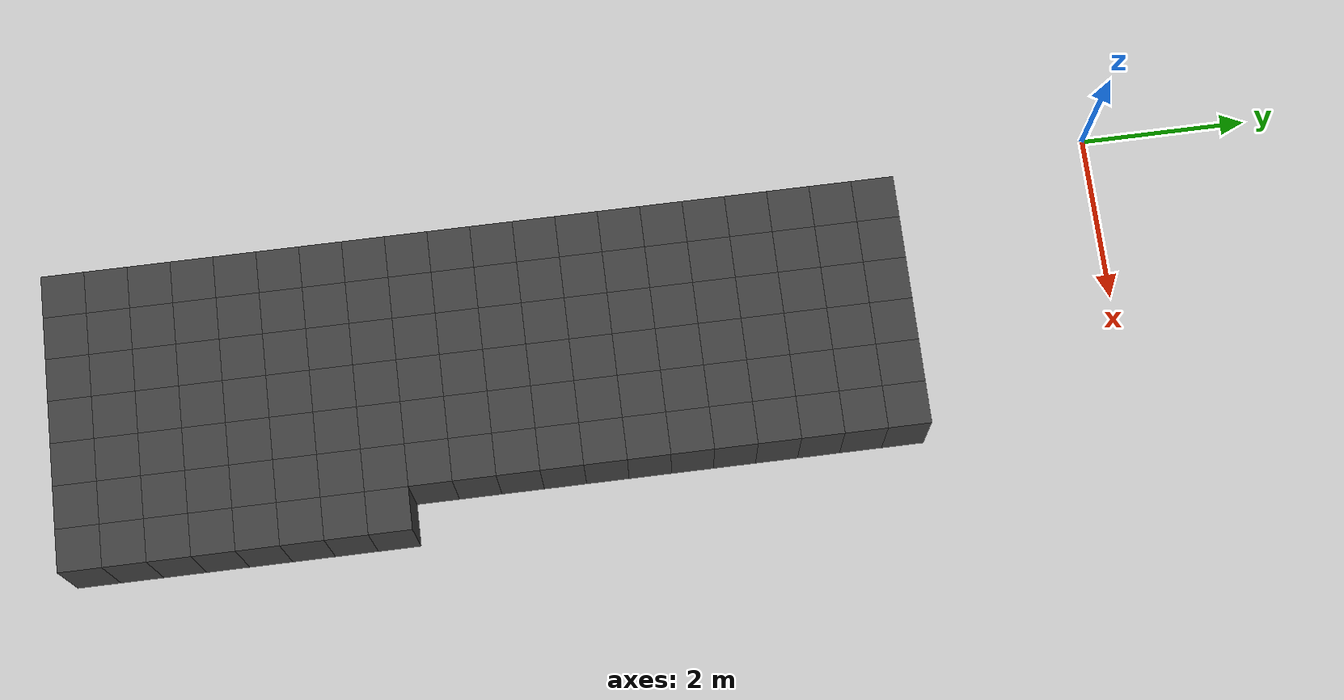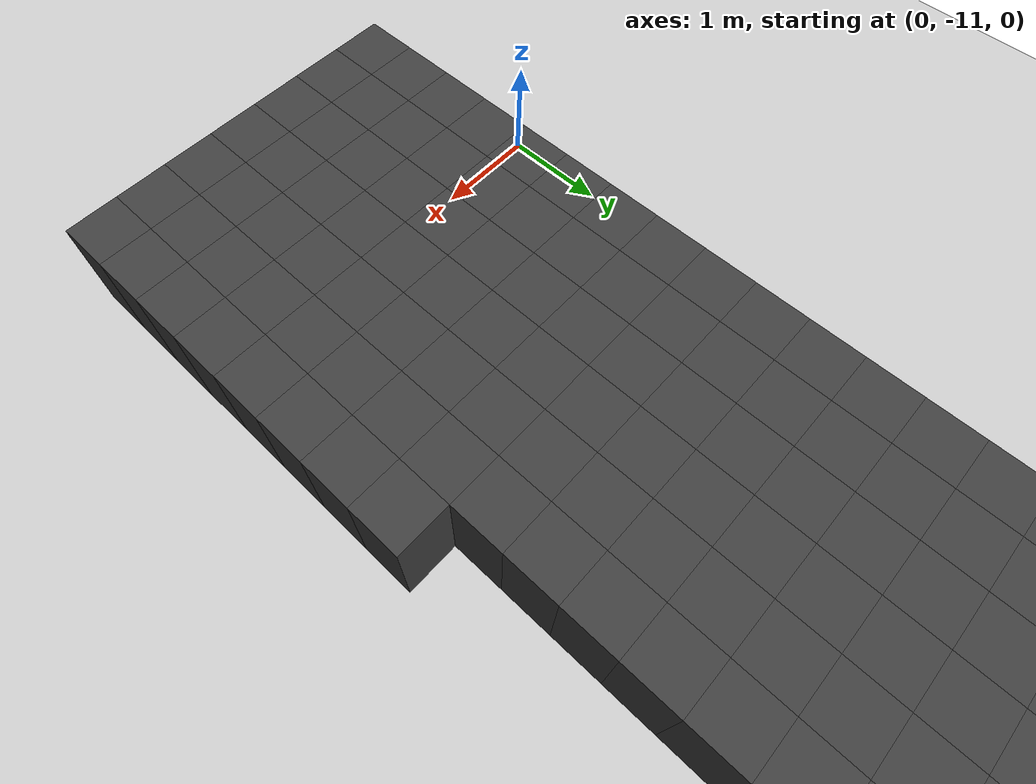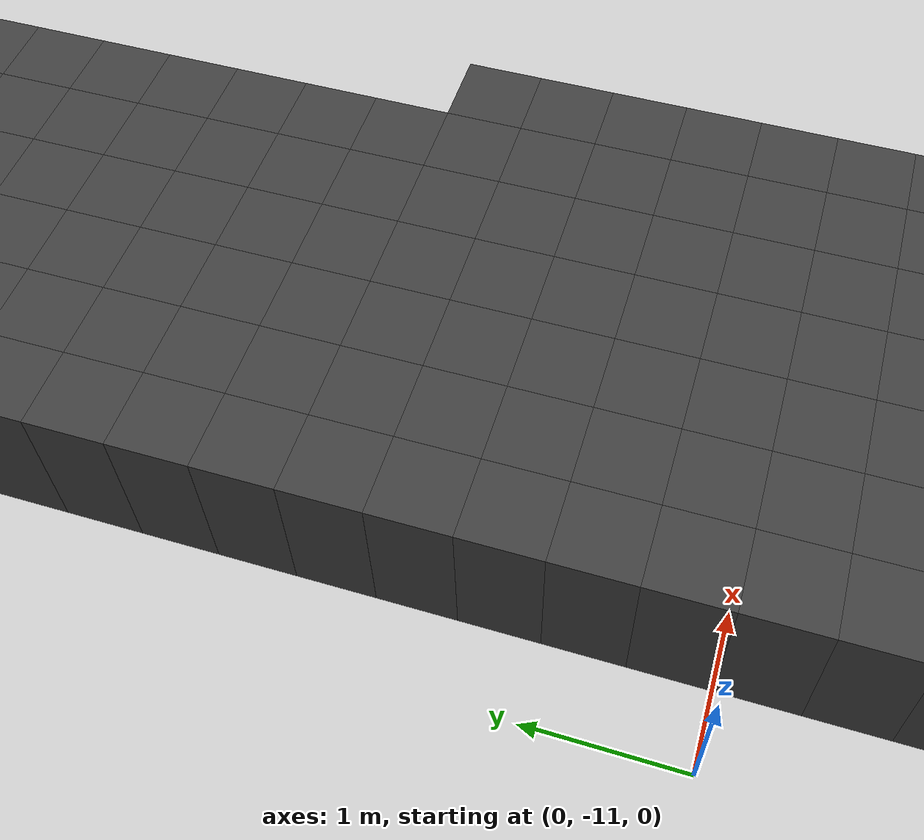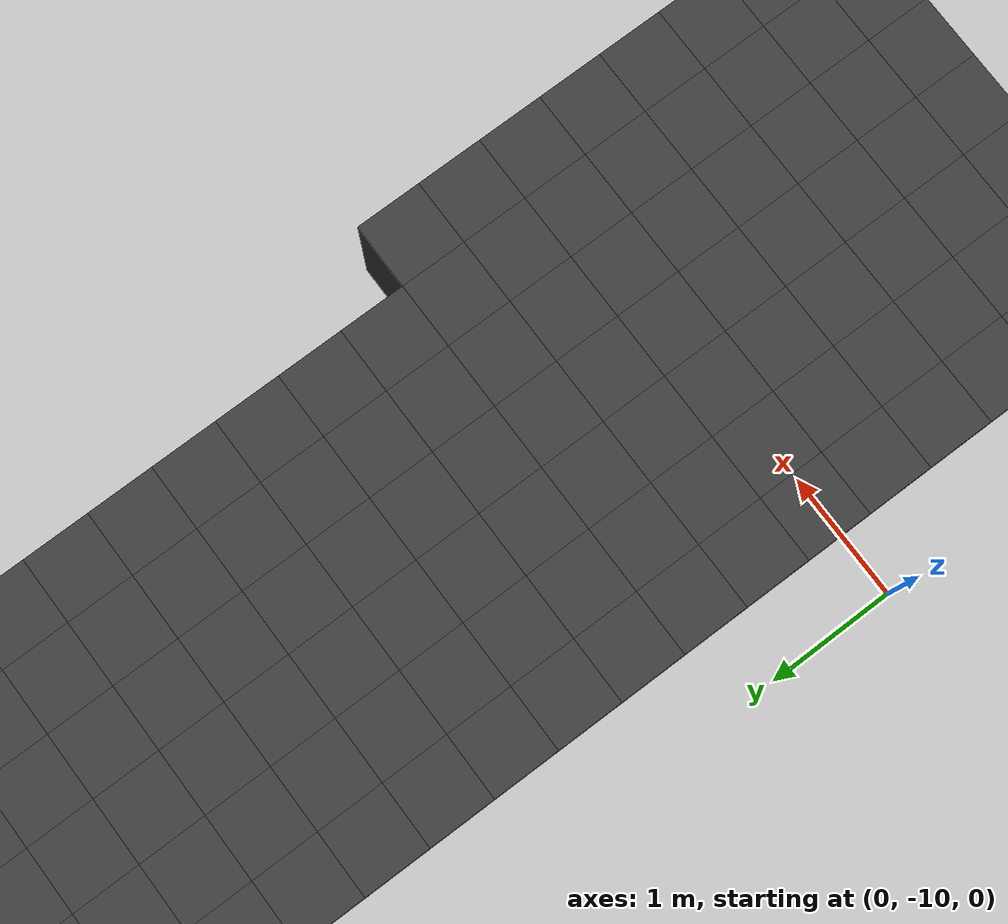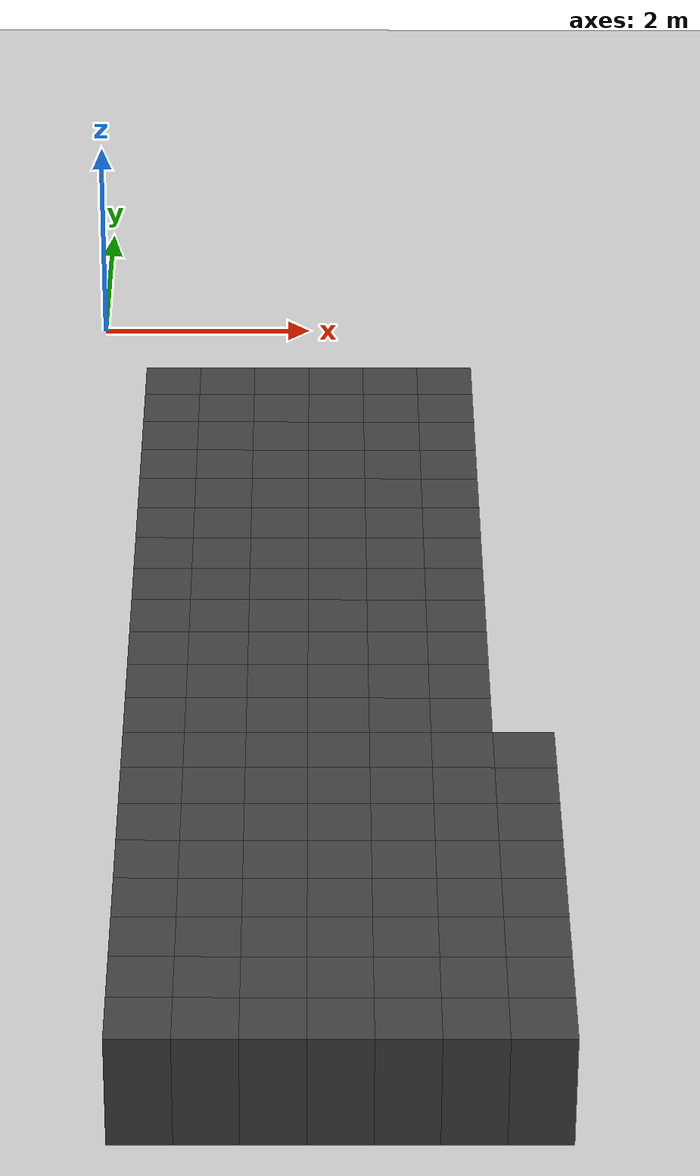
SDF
<sdf version="1.7">
 <world name="map_14980">
  <model name="ground_plane">
   <static>true</static>
   <link name="link">
    <collision name="collision">
     <geometry><plane><normal>0 0 1</normal><size>200 200</size></plane></geometry>
    </collision>
    <visual name="visual">
     <geometry><plane><normal>0 0 1</normal><size>200 200</size></plane></geometry>
     <material><ambient>0.8 0.8 0.8 1</ambient><diffuse>0.8 0.8 0.8 1</diffuse></material>
    </visual>
   </link>
  </model>
  <model name="maze_environment">
   <static>true</static>
   <link name="wall_1087">
    <pose>0.750 -2.750 0.500 0 0 0</pose>
    <collision name="col"><geometry><box><size>0.5 0.5 1.0</size></box></geometry></collision>
    <visual name="vis">
     <geometry><box><size>0.5 0.5 1.0</size></box></geometry>
     <material><ambient>0.15 0.15 0.15 1</ambient><diffuse>0.25 0.25 0.25 1</diffuse></material>
    </visual>
   </link>
   <link name="wall_1088">
    <pose>1.250 -2.750 0.500 0 0 0</pose>
    <collision name="col"><geometry><box><size>0.5 0.5 1.0</size></box></geometry></collision>
    <visual name="vis">
     <geometry><box><size>0.5 0.5 1.0</size></box></geometry>
     <material><ambient>0.15 0.15 0.15 1</ambient><diffuse>0.25 0.25 0.25 1</diffuse></material>
    </visual>
   </link>
   <link name="wall_1089">
    <pose>1.750 -2.750 0.500 0 0 0</pose>
    <collision name="col"><geometry><box><size>0.5 0.5 1.0</size></box></geometry></collision>
    <visual name="vis">
     <geometry><box><size>0.5 0.5 1.0</size></box></geometry>
     <material><ambient>0.15 0.15 0.15 1</ambient><diffuse>0.25 0.25 0.25 1</diffuse></material>
    </visual>
   </link>
   <link name="wall_1090">
    <pose>2.250 -2.750 0.500 0 0 0</pose>
    <collision name="col"><geometry><box><size>0.5 0.5 1.0</size></box></geometry></collision>
    <visual name="vis">
     <geometry><box><size>0.5 0.5 1.0</size></box></geometry>
     <material><ambient>0.15 0.15 0.15 1</ambient><diffuse>0.25 0.25 0.25 1</diffuse></material>
    </visual>
   </link>
   <link name="wall_1091">
    <pose>2.750 -2.750 0.500 0 0 0</pose>
    <collision name="col"><geometry><box><size>0.5 0.5 1.0</size></box></geometry></collision>
    <visual name="vis">
     <geometry><box><size>0.5 0.5 1.0</size></box></geometry>
     <material><ambient>0.15 0.15 0.15 1</ambient><diffuse>0.25 0.25 0.25 1</diffuse></material>
    </visual>
   </link>
   <link name="wall_1092">
    <pose>3.250 -2.750 0.500 0 0 0</pose>
    <collision name="col"><geometry><box><size>0.5 0.5 1.0</size></box></geometry></collision>
    <visual name="vis">
     <geometry><box><size>0.5 0.5 1.0</size></box></geometry>
     <material><ambient>0.15 0.15 0.15 1</ambient><diffuse>0.25 0.25 0.25 1</diffuse></material>
    </visual>
   </link>
   <link name="wall_1123">
    <pose>0.750 -3.250 0.500 0 0 0</pose>
    <collision name="col"><geometry><box><size>0.5 0.5 1.0</size></box></geometry></collision>
    <visual name="vis">
     <geometry><box><size>0.5 0.5 1.0</size></box></geometry>
     <material><ambient>0.15 0.15 0.15 1</ambient><diffuse>0.25 0.25 0.25 1</diffuse></material>
    </visual>
   </link>
   <link name="wall_1124">
    <pose>1.250 -3.250 0.500 0 0 0</pose>
    <collision name="col"><geometry><box><size>0.5 0.5 1.0</size></box></geometry></collision>
    <visual name="vis">
     <geometry><box><size>0.5 0.5 1.0</size></box></geometry>
     <material><ambient>0.15 0.15 0.15 1</ambient><diffuse>0.25 0.25 0.25 1</diffuse></material>
    </visual>
   </link>
   <link name="wall_1125">
    <pose>1.750 -3.250 0.500 0 0 0</pose>
    <collision name="col"><geometry><box><size>0.5 0.5 1.0</size></box></geometry></collision>
    <visual name="vis">
     <geometry><box><size>0.5 0.5 1.0</size></box></geometry>
     <material><ambient>0.15 0.15 0.15 1</ambient><diffuse>0.25 0.25 0.25 1</diffuse></material>
    </visual>
   </link>
   <link name="wall_1126">
    <pose>2.250 -3.250 0.500 0 0 0</pose>
    <collision name="col"><geometry><box><size>0.5 0.5 1.0</size></box></geometry></collision>
    <visual name="vis">
     <geometry><box><size>0.5 0.5 1.0</size></box></geometry>
     <material><ambient>0.15 0.15 0.15 1</ambient><diffuse>0.25 0.25 0.25 1</diffuse></material>
    </visual>
   </link>
   <link name="wall_1127">
    <pose>2.750 -3.250 0.500 0 0 0</pose>
    <collision name="col"><geometry><box><size>0.5 0.5 1.0</size></box></geometry></collision>
    <visual name="vis">
     <geometry><box><size>0.5 0.5 1.0</size></box></geometry>
     <material><ambient>0.15 0.15 0.15 1</ambient><diffuse>0.25 0.25 0.25 1</diffuse></material>
    </visual>
   </link>
   <link name="wall_1128">
    <pose>3.250 -3.250 0.500 0 0 0</pose>
    <collision name="col"><geometry><box><size>0.5 0.5 1.0</size></box></geometry></collision>
    <visual name="vis">
     <geometry><box><size>0.5 0.5 1.0</size></box></geometry>
     <material><ambient>0.15 0.15 0.15 1</ambient><diffuse>0.25 0.25 0.25 1</diffuse></material>
    </visual>
   </link>
   <link name="wall_1161">
    <pose>0.750 -3.750 0.500 0 0 0</pose>
    <collision name="col"><geometry><box><size>0.5 0.5 1.0</size></box></geometry></collision>
    <visual name="vis">
     <geometry><box><size>0.5 0.5 1.0</size></box></geometry>
     <material><ambient>0.15 0.15 0.15 1</ambient><diffuse>0.25 0.25 0.25 1</diffuse></material>
    </visual>
   </link>
   <link name="wall_1162">
    <pose>1.250 -3.750 0.500 0 0 0</pose>
    <collision name="col"><geometry><box><size>0.5 0.5 1.0</size></box></geometry></collision>
    <visual name="vis">
     <geometry><box><size>0.5 0.5 1.0</size></box></geometry>
     <material><ambient>0.15 0.15 0.15 1</ambient><diffuse>0.25 0.25 0.25 1</diffuse></material>
    </visual>
   </link>
   <link name="wall_1163">
    <pose>1.750 -3.750 0.500 0 0 0</pose>
    <collision name="col"><geometry><box><size>0.5 0.5 1.0</size></box></geometry></collision>
    <visual name="vis">
     <geometry><box><size>0.5 0.5 1.0</size></box></geometry>
     <material><ambient>0.15 0.15 0.15 1</ambient><diffuse>0.25 0.25 0.25 1</diffuse></material>
    </visual>
   </link>
   <link name="wall_1164">
    <pose>2.250 -3.750 0.500 0 0 0</pose>
    <collision name="col"><geometry><box><size>0.5 0.5 1.0</size></box></geometry></collision>
    <visual name="vis">
     <geometry><box><size>0.5 0.5 1.0</size></box></geometry>
     <material><ambient>0.15 0.15 0.15 1</ambient><diffuse>0.25 0.25 0.25 1</diffuse></material>
    </visual>
   </link>
   <link name="wall_1165">
    <pose>2.750 -3.750 0.500 0 0 0</pose>
    <collision name="col"><geometry><box><size>0.5 0.5 1.0</size></box></geometry></collision>
    <visual name="vis">
     <geometry><box><size>0.5 0.5 1.0</size></box></geometry>
     <material><ambient>0.15 0.15 0.15 1</ambient><diffuse>0.25 0.25 0.25 1</diffuse></material>
    </visual>
   </link>
   <link name="wall_1166">
    <pose>3.250 -3.750 0.500 0 0 0</pose>
    <collision name="col"><geometry><box><size>0.5 0.5 1.0</size></box></geometry></collision>
    <visual name="vis">
     <geometry><box><size>0.5 0.5 1.0</size></box></geometry>
     <material><ambient>0.15 0.15 0.15 1</ambient><diffuse>0.25 0.25 0.25 1</diffuse></material>
    </visual>
   </link>
   <link name="wall_1206">
    <pose>0.750 -4.250 0.500 0 0 0</pose>
    <collision name="col"><geometry><box><size>0.5 0.5 1.0</size></box></geometry></collision>
    <visual name="vis">
     <geometry><box><size>0.5 0.5 1.0</size></box></geometry>
     <material><ambient>0.15 0.15 0.15 1</ambient><diffuse>0.25 0.25 0.25 1</diffuse></material>
    </visual>
   </link>
   <link name="wall_1207">
    <pose>1.250 -4.250 0.500 0 0 0</pose>
    <collision name="col"><geometry><box><size>0.5 0.5 1.0</size></box></geometry></collision>
    <visual name="vis">
     <geometry><box><size>0.5 0.5 1.0</size></box></geometry>
     <material><ambient>0.15 0.15 0.15 1</ambient><diffuse>0.25 0.25 0.25 1</diffuse></material>
    </visual>
   </link>
   <link name="wall_1208">
    <pose>1.750 -4.250 0.500 0 0 0</pose>
    <collision name="col"><geometry><box><size>0.5 0.5 1.0</size></box></geometry></collision>
    <visual name="vis">
     <geometry><box><size>0.5 0.5 1.0</size></box></geometry>
     <material><ambient>0.15 0.15 0.15 1</ambient><diffuse>0.25 0.25 0.25 1</diffuse></material>
    </visual>
   </link>
   <link name="wall_1209">
    <pose>2.250 -4.250 0.500 0 0 0</pose>
    <collision name="col"><geometry><box><size>0.5 0.5 1.0</size></box></geometry></collision>
    <visual name="vis">
     <geometry><box><size>0.5 0.5 1.0</size></box></geometry>
     <material><ambient>0.15 0.15 0.15 1</ambient><diffuse>0.25 0.25 0.25 1</diffuse></material>
    </visual>
   </link>
   <link name="wall_1210">
    <pose>2.750 -4.250 0.500 0 0 0</pose>
    <collision name="col"><geometry><box><size>0.5 0.5 1.0</size></box></geometry></collision>
    <visual name="vis">
     <geometry><box><size>0.5 0.5 1.0</size></box></geometry>
     <material><ambient>0.15 0.15 0.15 1</ambient><diffuse>0.25 0.25 0.25 1</diffuse></material>
    </visual>
   </link>
   <link name="wall_1211">
    <pose>3.250 -4.250 0.500 0 0 0</pose>
    <collision name="col"><geometry><box><size>0.5 0.5 1.0</size></box></geometry></collision>
    <visual name="vis">
     <geometry><box><size>0.5 0.5 1.0</size></box></geometry>
     <material><ambient>0.15 0.15 0.15 1</ambient><diffuse>0.25 0.25 0.25 1</diffuse></material>
    </visual>
   </link>
   <link name="wall_1251">
    <pose>0.750 -4.750 0.500 0 0 0</pose>
    <collision name="col"><geometry><box><size>0.5 0.5 1.0</size></box></geometry></collision>
    <visual name="vis">
     <geometry><box><size>0.5 0.5 1.0</size></box></geometry>
     <material><ambient>0.15 0.15 0.15 1</ambient><diffuse>0.25 0.25 0.25 1</diffuse></material>
    </visual>
   </link>
   <link name="wall_1252">
    <pose>1.250 -4.750 0.500 0 0 0</pose>
    <collision name="col"><geometry><box><size>0.5 0.5 1.0</size></box></geometry></collision>
    <visual name="vis">
     <geometry><box><size>0.5 0.5 1.0</size></box></geometry>
     <material><ambient>0.15 0.15 0.15 1</ambient><diffuse>0.25 0.25 0.25 1</diffuse></material>
    </visual>
   </link>
   <link name="wall_1253">
    <pose>1.750 -4.750 0.500 0 0 0</pose>
    <collision name="col"><geometry><box><size>0.5 0.5 1.0</size></box></geometry></collision>
    <visual name="vis">
     <geometry><box><size>0.5 0.5 1.0</size></box></geometry>
     <material><ambient>0.15 0.15 0.15 1</ambient><diffuse>0.25 0.25 0.25 1</diffuse></material>
    </visual>
   </link>
   <link name="wall_1254">
    <pose>2.250 -4.750 0.500 0 0 0</pose>
    <collision name="col"><geometry><box><size>0.5 0.5 1.0</size></box></geometry></collision>
    <visual name="vis">
     <geometry><box><size>0.5 0.5 1.0</size></box></geometry>
     <material><ambient>0.15 0.15 0.15 1</ambient><diffuse>0.25 0.25 0.25 1</diffuse></material>
    </visual>
   </link>
   <link name="wall_1255">
    <pose>2.750 -4.750 0.500 0 0 0</pose>
    <collision name="col"><geometry><box><size>0.5 0.5 1.0</size></box></geometry></collision>
    <visual name="vis">
     <geometry><box><size>0.5 0.5 1.0</size></box></geometry>
     <material><ambient>0.15 0.15 0.15 1</ambient><diffuse>0.25 0.25 0.25 1</diffuse></material>
    </visual>
   </link>
   <link name="wall_1256">
    <pose>3.250 -4.750 0.500 0 0 0</pose>
    <collision name="col"><geometry><box><size>0.5 0.5 1.0</size></box></geometry></collision>
    <visual name="vis">
     <geometry><box><size>0.5 0.5 1.0</size></box></geometry>
     <material><ambient>0.15 0.15 0.15 1</ambient><diffuse>0.25 0.25 0.25 1</diffuse></material>
    </visual>
   </link>
   <link name="wall_1295">
    <pose>0.750 -5.250 0.500 0 0 0</pose>
    <collision name="col"><geometry><box><size>0.5 0.5 1.0</size></box></geometry></collision>
    <visual name="vis">
     <geometry><box><size>0.5 0.5 1.0</size></box></geometry>
     <material><ambient>0.15 0.15 0.15 1</ambient><diffuse>0.25 0.25 0.25 1</diffuse></material>
    </visual>
   </link>
   <link name="wall_1296">
    <pose>1.250 -5.250 0.500 0 0 0</pose>
    <collision name="col"><geometry><box><size>0.5 0.5 1.0</size></box></geometry></collision>
    <visual name="vis">
     <geometry><box><size>0.5 0.5 1.0</size></box></geometry>
     <material><ambient>0.15 0.15 0.15 1</ambient><diffuse>0.25 0.25 0.25 1</diffuse></material>
    </visual>
   </link>
   <link name="wall_1297">
    <pose>1.750 -5.250 0.500 0 0 0</pose>
    <collision name="col"><geometry><box><size>0.5 0.5 1.0</size></box></geometry></collision>
    <visual name="vis">
     <geometry><box><size>0.5 0.5 1.0</size></box></geometry>
     <material><ambient>0.15 0.15 0.15 1</ambient><diffuse>0.25 0.25 0.25 1</diffuse></material>
    </visual>
   </link>
   <link name="wall_1298">
    <pose>2.250 -5.250 0.500 0 0 0</pose>
    <collision name="col"><geometry><box><size>0.5 0.5 1.0</size></box></geometry></collision>
    <visual name="vis">
     <geometry><box><size>0.5 0.5 1.0</size></box></geometry>
     <material><ambient>0.15 0.15 0.15 1</ambient><diffuse>0.25 0.25 0.25 1</diffuse></material>
    </visual>
   </link>
   <link name="wall_1299">
    <pose>2.750 -5.250 0.500 0 0 0</pose>
    <collision name="col"><geometry><box><size>0.5 0.5 1.0</size></box></geometry></collision>
    <visual name="vis">
     <geometry><box><size>0.5 0.5 1.0</size></box></geometry>
     <material><ambient>0.15 0.15 0.15 1</ambient><diffuse>0.25 0.25 0.25 1</diffuse></material>
    </visual>
   </link>
   <link name="wall_1300">
    <pose>3.250 -5.250 0.500 0 0 0</pose>
    <collision name="col"><geometry><box><size>0.5 0.5 1.0</size></box></geometry></collision>
    <visual name="vis">
     <geometry><box><size>0.5 0.5 1.0</size></box></geometry>
     <material><ambient>0.15 0.15 0.15 1</ambient><diffuse>0.25 0.25 0.25 1</diffuse></material>
    </visual>
   </link>
   <link name="wall_1339">
    <pose>0.750 -5.750 0.500 0 0 0</pose>
    <collision name="col"><geometry><box><size>0.5 0.5 1.0</size></box></geometry></collision>
    <visual name="vis">
     <geometry><box><size>0.5 0.5 1.0</size></box></geometry>
     <material><ambient>0.15 0.15 0.15 1</ambient><diffuse>0.25 0.25 0.25 1</diffuse></material>
    </visual>
   </link>
   <link name="wall_1340">
    <pose>1.250 -5.750 0.500 0 0 0</pose>
    <collision name="col"><geometry><box><size>0.5 0.5 1.0</size></box></geometry></collision>
    <visual name="vis">
     <geometry><box><size>0.5 0.5 1.0</size></box></geometry>
     <material><ambient>0.15 0.15 0.15 1</ambient><diffuse>0.25 0.25 0.25 1</diffuse></material>
    </visual>
   </link>
   <link name="wall_1341">
    <pose>1.750 -5.750 0.500 0 0 0</pose>
    <collision name="col"><geometry><box><size>0.5 0.5 1.0</size></box></geometry></collision>
    <visual name="vis">
     <geometry><box><size>0.5 0.5 1.0</size></box></geometry>
     <material><ambient>0.15 0.15 0.15 1</ambient><diffuse>0.25 0.25 0.25 1</diffuse></material>
    </visual>
   </link>
   <link name="wall_1342">
    <pose>2.250 -5.750 0.500 0 0 0</pose>
    <collision name="col"><geometry><box><size>0.5 0.5 1.0</size></box></geometry></collision>
    <visual name="vis">
     <geometry><box><size>0.5 0.5 1.0</size></box></geometry>
     <material><ambient>0.15 0.15 0.15 1</ambient><diffuse>0.25 0.25 0.25 1</diffuse></material>
    </visual>
   </link>
   <link name="wall_1343">
    <pose>2.750 -5.750 0.500 0 0 0</pose>
    <collision name="col"><geometry><box><size>0.5 0.5 1.0</size></box></geometry></collision>
    <visual name="vis">
     <geometry><box><size>0.5 0.5 1.0</size></box></geometry>
     <material><ambient>0.15 0.15 0.15 1</ambient><diffuse>0.25 0.25 0.25 1</diffuse></material>
    </visual>
   </link>
   <link name="wall_1344">
    <pose>3.250 -5.750 0.500 0 0 0</pose>
    <collision name="col"><geometry><box><size>0.5 0.5 1.0</size></box></geometry></collision>
    <visual name="vis">
     <geometry><box><size>0.5 0.5 1.0</size></box></geometry>
     <material><ambient>0.15 0.15 0.15 1</ambient><diffuse>0.25 0.25 0.25 1</diffuse></material>
    </visual>
   </link>
   <link name="wall_1383">
    <pose>0.750 -6.250 0.500 0 0 0</pose>
    <collision name="col"><geometry><box><size>0.5 0.5 1.0</size></box></geometry></collision>
    <visual name="vis">
     <geometry><box><size>0.5 0.5 1.0</size></box></geometry>
     <material><ambient>0.15 0.15 0.15 1</ambient><diffuse>0.25 0.25 0.25 1</diffuse></material>
    </visual>
   </link>
   <link name="wall_1384">
    <pose>1.250 -6.250 0.500 0 0 0</pose>
    <collision name="col"><geometry><box><size>0.5 0.5 1.0</size></box></geometry></collision>
    <visual name="vis">
     <geometry><box><size>0.5 0.5 1.0</size></box></geometry>
     <material><ambient>0.15 0.15 0.15 1</ambient><diffuse>0.25 0.25 0.25 1</diffuse></material>
    </visual>
   </link>
   <link name="wall_1385">
    <pose>1.750 -6.250 0.500 0 0 0</pose>
    <collision name="col"><geometry><box><size>0.5 0.5 1.0</size></box></geometry></collision>
    <visual name="vis">
     <geometry><box><size>0.5 0.5 1.0</size></box></geometry>
     <material><ambient>0.15 0.15 0.15 1</ambient><diffuse>0.25 0.25 0.25 1</diffuse></material>
    </visual>
   </link>
   <link name="wall_1386">
    <pose>2.250 -6.250 0.500 0 0 0</pose>
    <collision name="col"><geometry><box><size>0.5 0.5 1.0</size></box></geometry></collision>
    <visual name="vis">
     <geometry><box><size>0.5 0.5 1.0</size></box></geometry>
     <material><ambient>0.15 0.15 0.15 1</ambient><diffuse>0.25 0.25 0.25 1</diffuse></material>
    </visual>
   </link>
   <link name="wall_1387">
    <pose>2.750 -6.250 0.500 0 0 0</pose>
    <collision name="col"><geometry><box><size>0.5 0.5 1.0</size></box></geometry></collision>
    <visual name="vis">
     <geometry><box><size>0.5 0.5 1.0</size></box></geometry>
     <material><ambient>0.15 0.15 0.15 1</ambient><diffuse>0.25 0.25 0.25 1</diffuse></material>
    </visual>
   </link>
   <link name="wall_1388">
    <pose>3.250 -6.250 0.500 0 0 0</pose>
    <collision name="col"><geometry><box><size>0.5 0.5 1.0</size></box></geometry></collision>
    <visual name="vis">
     <geometry><box><size>0.5 0.5 1.0</size></box></geometry>
     <material><ambient>0.15 0.15 0.15 1</ambient><diffuse>0.25 0.25 0.25 1</diffuse></material>
    </visual>
   </link>
   <link name="wall_1416">
    <pose>0.750 -6.750 0.500 0 0 0</pose>
    <collision name="col"><geometry><box><size>0.5 0.5 1.0</size></box></geometry></collision>
    <visual name="vis">
     <geometry><box><size>0.5 0.5 1.0</size></box></geometry>
     <material><ambient>0.15 0.15 0.15 1</ambient><diffuse>0.25 0.25 0.25 1</diffuse></material>
    </visual>
   </link>
   <link name="wall_1417">
    <pose>1.250 -6.750 0.500 0 0 0</pose>
    <collision name="col"><geometry><box><size>0.5 0.5 1.0</size></box></geometry></collision>
    <visual name="vis">
     <geometry><box><size>0.5 0.5 1.0</size></box></geometry>
     <material><ambient>0.15 0.15 0.15 1</ambient><diffuse>0.25 0.25 0.25 1</diffuse></material>
    </visual>
   </link>
   <link name="wall_1418">
    <pose>1.750 -6.750 0.500 0 0 0</pose>
    <collision name="col"><geometry><box><size>0.5 0.5 1.0</size></box></geometry></collision>
    <visual name="vis">
     <geometry><box><size>0.5 0.5 1.0</size></box></geometry>
     <material><ambient>0.15 0.15 0.15 1</ambient><diffuse>0.25 0.25 0.25 1</diffuse></material>
    </visual>
   </link>
   <link name="wall_1419">
    <pose>2.250 -6.750 0.500 0 0 0</pose>
    <collision name="col"><geometry><box><size>0.5 0.5 1.0</size></box></geometry></collision>
    <visual name="vis">
     <geometry><box><size>0.5 0.5 1.0</size></box></geometry>
     <material><ambient>0.15 0.15 0.15 1</ambient><diffuse>0.25 0.25 0.25 1</diffuse></material>
    </visual>
   </link>
   <link name="wall_1420">
    <pose>2.750 -6.750 0.500 0 0 0</pose>
    <collision name="col"><geometry><box><size>0.5 0.5 1.0</size></box></geometry></collision>
    <visual name="vis">
     <geometry><box><size>0.5 0.5 1.0</size></box></geometry>
     <material><ambient>0.15 0.15 0.15 1</ambient><diffuse>0.25 0.25 0.25 1</diffuse></material>
    </visual>
   </link>
   <link name="wall_1421">
    <pose>3.250 -6.750 0.500 0 0 0</pose>
    <collision name="col"><geometry><box><size>0.5 0.5 1.0</size></box></geometry></collision>
    <visual name="vis">
     <geometry><box><size>0.5 0.5 1.0</size></box></geometry>
     <material><ambient>0.15 0.15 0.15 1</ambient><diffuse>0.25 0.25 0.25 1</diffuse></material>
    </visual>
   </link>
   <link name="wall_1442">
    <pose>0.750 -7.250 0.500 0 0 0</pose>
    <collision name="col"><geometry><box><size>0.5 0.5 1.0</size></box></geometry></collision>
    <visual name="vis">
     <geometry><box><size>0.5 0.5 1.0</size></box></geometry>
     <material><ambient>0.15 0.15 0.15 1</ambient><diffuse>0.25 0.25 0.25 1</diffuse></material>
    </visual>
   </link>
   <link name="wall_1443">
    <pose>1.250 -7.250 0.500 0 0 0</pose>
    <collision name="col"><geometry><box><size>0.5 0.5 1.0</size></box></geometry></collision>
    <visual name="vis">
     <geometry><box><size>0.5 0.5 1.0</size></box></geometry>
     <material><ambient>0.15 0.15 0.15 1</ambient><diffuse>0.25 0.25 0.25 1</diffuse></material>
    </visual>
   </link>
   <link name="wall_1444">
    <pose>1.750 -7.250 0.500 0 0 0</pose>
    <collision name="col"><geometry><box><size>0.5 0.5 1.0</size></box></geometry></collision>
    <visual name="vis">
     <geometry><box><size>0.5 0.5 1.0</size></box></geometry>
     <material><ambient>0.15 0.15 0.15 1</ambient><diffuse>0.25 0.25 0.25 1</diffuse></material>
    </visual>
   </link>
   <link name="wall_1445">
    <pose>2.250 -7.250 0.500 0 0 0</pose>
    <collision name="col"><geometry><box><size>0.5 0.5 1.0</size></box></geometry></collision>
    <visual name="vis">
     <geometry><box><size>0.5 0.5 1.0</size></box></geometry>
     <material><ambient>0.15 0.15 0.15 1</ambient><diffuse>0.25 0.25 0.25 1</diffuse></material>
    </visual>
   </link>
   <link name="wall_1446">
    <pose>2.750 -7.250 0.500 0 0 0</pose>
    <collision name="col"><geometry><box><size>0.5 0.5 1.0</size></box></geometry></collision>
    <visual name="vis">
     <geometry><box><size>0.5 0.5 1.0</size></box></geometry>
     <material><ambient>0.15 0.15 0.15 1</ambient><diffuse>0.25 0.25 0.25 1</diffuse></material>
    </visual>
   </link>
   <link name="wall_1447">
    <pose>3.250 -7.250 0.500 0 0 0</pose>
    <collision name="col"><geometry><box><size>0.5 0.5 1.0</size></box></geometry></collision>
    <visual name="vis">
     <geometry><box><size>0.5 0.5 1.0</size></box></geometry>
     <material><ambient>0.15 0.15 0.15 1</ambient><diffuse>0.25 0.25 0.25 1</diffuse></material>
    </visual>
   </link>
   <link name="wall_1466">
    <pose>0.750 -7.750 0.500 0 0 0</pose>
    <collision name="col"><geometry><box><size>0.5 0.5 1.0</size></box></geometry></collision>
    <visual name="vis">
     <geometry><box><size>0.5 0.5 1.0</size></box></geometry>
     <material><ambient>0.15 0.15 0.15 1</ambient><diffuse>0.25 0.25 0.25 1</diffuse></material>
    </visual>
   </link>
   <link name="wall_1467">
    <pose>1.250 -7.750 0.500 0 0 0</pose>
    <collision name="col"><geometry><box><size>0.5 0.5 1.0</size></box></geometry></collision>
    <visual name="vis">
     <geometry><box><size>0.5 0.5 1.0</size></box></geometry>
     <material><ambient>0.15 0.15 0.15 1</ambient><diffuse>0.25 0.25 0.25 1</diffuse></material>
    </visual>
   </link>
   <link name="wall_1468">
    <pose>1.750 -7.750 0.500 0 0 0</pose>
    <collision name="col"><geometry><box><size>0.5 0.5 1.0</size></box></geometry></collision>
    <visual name="vis">
     <geometry><box><size>0.5 0.5 1.0</size></box></geometry>
     <material><ambient>0.15 0.15 0.15 1</ambient><diffuse>0.25 0.25 0.25 1</diffuse></material>
    </visual>
   </link>
   <link name="wall_1469">
    <pose>2.250 -7.750 0.500 0 0 0</pose>
    <collision name="col"><geometry><box><size>0.5 0.5 1.0</size></box></geometry></collision>
    <visual name="vis">
     <geometry><box><size>0.5 0.5 1.0</size></box></geometry>
     <material><ambient>0.15 0.15 0.15 1</ambient><diffuse>0.25 0.25 0.25 1</diffuse></material>
    </visual>
   </link>
   <link name="wall_1470">
    <pose>2.750 -7.750 0.500 0 0 0</pose>
    <collision name="col"><geometry><box><size>0.5 0.5 1.0</size></box></geometry></collision>
    <visual name="vis">
     <geometry><box><size>0.5 0.5 1.0</size></box></geometry>
     <material><ambient>0.15 0.15 0.15 1</ambient><diffuse>0.25 0.25 0.25 1</diffuse></material>
    </visual>
   </link>
   <link name="wall_1471">
    <pose>3.250 -7.750 0.500 0 0 0</pose>
    <collision name="col"><geometry><box><size>0.5 0.5 1.0</size></box></geometry></collision>
    <visual name="vis">
     <geometry><box><size>0.5 0.5 1.0</size></box></geometry>
     <material><ambient>0.15 0.15 0.15 1</ambient><diffuse>0.25 0.25 0.25 1</diffuse></material>
    </visual>
   </link>
   <link name="wall_1490">
    <pose>0.750 -8.250 0.500 0 0 0</pose>
    <collision name="col"><geometry><box><size>0.5 0.5 1.0</size></box></geometry></collision>
    <visual name="vis">
     <geometry><box><size>0.5 0.5 1.0</size></box></geometry>
     <material><ambient>0.15 0.15 0.15 1</ambient><diffuse>0.25 0.25 0.25 1</diffuse></material>
    </visual>
   </link>
   <link name="wall_1491">
    <pose>1.250 -8.250 0.500 0 0 0</pose>
    <collision name="col"><geometry><box><size>0.5 0.5 1.0</size></box></geometry></collision>
    <visual name="vis">
     <geometry><box><size>0.5 0.5 1.0</size></box></geometry>
     <material><ambient>0.15 0.15 0.15 1</ambient><diffuse>0.25 0.25 0.25 1</diffuse></material>
    </visual>
   </link>
   <link name="wall_1492">
    <pose>1.750 -8.250 0.500 0 0 0</pose>
    <collision name="col"><geometry><box><size>0.5 0.5 1.0</size></box></geometry></collision>
    <visual name="vis">
     <geometry><box><size>0.5 0.5 1.0</size></box></geometry>
     <material><ambient>0.15 0.15 0.15 1</ambient><diffuse>0.25 0.25 0.25 1</diffuse></material>
    </visual>
   </link>
   <link name="wall_1493">
    <pose>2.250 -8.250 0.500 0 0 0</pose>
    <collision name="col"><geometry><box><size>0.5 0.5 1.0</size></box></geometry></collision>
    <visual name="vis">
     <geometry><box><size>0.5 0.5 1.0</size></box></geometry>
     <material><ambient>0.15 0.15 0.15 1</ambient><diffuse>0.25 0.25 0.25 1</diffuse></material>
    </visual>
   </link>
   <link name="wall_1494">
    <pose>2.750 -8.250 0.500 0 0 0</pose>
    <collision name="col"><geometry><box><size>0.5 0.5 1.0</size></box></geometry></collision>
    <visual name="vis">
     <geometry><box><size>0.5 0.5 1.0</size></box></geometry>
     <material><ambient>0.15 0.15 0.15 1</ambient><diffuse>0.25 0.25 0.25 1</diffuse></material>
    </visual>
   </link>
   <link name="wall_1495">
    <pose>3.250 -8.250 0.500 0 0 0</pose>
    <collision name="col"><geometry><box><size>0.5 0.5 1.0</size></box></geometry></collision>
    <visual name="vis">
     <geometry><box><size>0.5 0.5 1.0</size></box></geometry>
     <material><ambient>0.15 0.15 0.15 1</ambient><diffuse>0.25 0.25 0.25 1</diffuse></material>
    </visual>
   </link>
   <link name="wall_1514">
    <pose>0.750 -8.750 0.500 0 0 0</pose>
    <collision name="col"><geometry><box><size>0.5 0.5 1.0</size></box></geometry></collision>
    <visual name="vis">
     <geometry><box><size>0.5 0.5 1.0</size></box></geometry>
     <material><ambient>0.15 0.15 0.15 1</ambient><diffuse>0.25 0.25 0.25 1</diffuse></material>
    </visual>
   </link>
   <link name="wall_1515">
    <pose>1.250 -8.750 0.500 0 0 0</pose>
    <collision name="col"><geometry><box><size>0.5 0.5 1.0</size></box></geometry></collision>
    <visual name="vis">
     <geometry><box><size>0.5 0.5 1.0</size></box></geometry>
     <material><ambient>0.15 0.15 0.15 1</ambient><diffuse>0.25 0.25 0.25 1</diffuse></material>
    </visual>
   </link>
   <link name="wall_1516">
    <pose>1.750 -8.750 0.500 0 0 0</pose>
    <collision name="col"><geometry><box><size>0.5 0.5 1.0</size></box></geometry></collision>
    <visual name="vis">
     <geometry><box><size>0.5 0.5 1.0</size></box></geometry>
     <material><ambient>0.15 0.15 0.15 1</ambient><diffuse>0.25 0.25 0.25 1</diffuse></material>
    </visual>
   </link>
   <link name="wall_1517">
    <pose>2.250 -8.750 0.500 0 0 0</pose>
    <collision name="col"><geometry><box><size>0.5 0.5 1.0</size></box></geometry></collision>
    <visual name="vis">
     <geometry><box><size>0.5 0.5 1.0</size></box></geometry>
     <material><ambient>0.15 0.15 0.15 1</ambient><diffuse>0.25 0.25 0.25 1</diffuse></material>
    </visual>
   </link>
   <link name="wall_1518">
    <pose>2.750 -8.750 0.500 0 0 0</pose>
    <collision name="col"><geometry><box><size>0.5 0.5 1.0</size></box></geometry></collision>
    <visual name="vis">
     <geometry><box><size>0.5 0.5 1.0</size></box></geometry>
     <material><ambient>0.15 0.15 0.15 1</ambient><diffuse>0.25 0.25 0.25 1</diffuse></material>
    </visual>
   </link>
   <link name="wall_1519">
    <pose>3.250 -8.750 0.500 0 0 0</pose>
    <collision name="col"><geometry><box><size>0.5 0.5 1.0</size></box></geometry></collision>
    <visual name="vis">
     <geometry><box><size>0.5 0.5 1.0</size></box></geometry>
     <material><ambient>0.15 0.15 0.15 1</ambient><diffuse>0.25 0.25 0.25 1</diffuse></material>
    </visual>
   </link>
   <link name="wall_1520">
    <pose>3.750 -8.750 0.500 0 0 0</pose>
    <collision name="col"><geometry><box><size>0.5 0.5 1.0</size></box></geometry></collision>
    <visual name="vis">
     <geometry><box><size>0.5 0.5 1.0</size></box></geometry>
     <material><ambient>0.15 0.15 0.15 1</ambient><diffuse>0.25 0.25 0.25 1</diffuse></material>
    </visual>
   </link>
   <link name="wall_1540">
    <pose>0.750 -9.250 0.500 0 0 0</pose>
    <collision name="col"><geometry><box><size>0.5 0.5 1.0</size></box></geometry></collision>
    <visual name="vis">
     <geometry><box><size>0.5 0.5 1.0</size></box></geometry>
     <material><ambient>0.15 0.15 0.15 1</ambient><diffuse>0.25 0.25 0.25 1</diffuse></material>
    </visual>
   </link>
   <link name="wall_1541">
    <pose>1.250 -9.250 0.500 0 0 0</pose>
    <collision name="col"><geometry><box><size>0.5 0.5 1.0</size></box></geometry></collision>
    <visual name="vis">
     <geometry><box><size>0.5 0.5 1.0</size></box></geometry>
     <material><ambient>0.15 0.15 0.15 1</ambient><diffuse>0.25 0.25 0.25 1</diffuse></material>
    </visual>
   </link>
   <link name="wall_1542">
    <pose>1.750 -9.250 0.500 0 0 0</pose>
    <collision name="col"><geometry><box><size>0.5 0.5 1.0</size></box></geometry></collision>
    <visual name="vis">
     <geometry><box><size>0.5 0.5 1.0</size></box></geometry>
     <material><ambient>0.15 0.15 0.15 1</ambient><diffuse>0.25 0.25 0.25 1</diffuse></material>
    </visual>
   </link>
   <link name="wall_1543">
    <pose>2.250 -9.250 0.500 0 0 0</pose>
    <collision name="col"><geometry><box><size>0.5 0.5 1.0</size></box></geometry></collision>
    <visual name="vis">
     <geometry><box><size>0.5 0.5 1.0</size></box></geometry>
     <material><ambient>0.15 0.15 0.15 1</ambient><diffuse>0.25 0.25 0.25 1</diffuse></material>
    </visual>
   </link>
   <link name="wall_1544">
    <pose>2.750 -9.250 0.500 0 0 0</pose>
    <collision name="col"><geometry><box><size>0.5 0.5 1.0</size></box></geometry></collision>
    <visual name="vis">
     <geometry><box><size>0.5 0.5 1.0</size></box></geometry>
     <material><ambient>0.15 0.15 0.15 1</ambient><diffuse>0.25 0.25 0.25 1</diffuse></material>
    </visual>
   </link>
   <link name="wall_1545">
    <pose>3.250 -9.250 0.500 0 0 0</pose>
    <collision name="col"><geometry><box><size>0.5 0.5 1.0</size></box></geometry></collision>
    <visual name="vis">
     <geometry><box><size>0.5 0.5 1.0</size></box></geometry>
     <material><ambient>0.15 0.15 0.15 1</ambient><diffuse>0.25 0.25 0.25 1</diffuse></material>
    </visual>
   </link>
   <link name="wall_1546">
    <pose>3.750 -9.250 0.500 0 0 0</pose>
    <collision name="col"><geometry><box><size>0.5 0.5 1.0</size></box></geometry></collision>
    <visual name="vis">
     <geometry><box><size>0.5 0.5 1.0</size></box></geometry>
     <material><ambient>0.15 0.15 0.15 1</ambient><diffuse>0.25 0.25 0.25 1</diffuse></material>
    </visual>
   </link>
   <link name="wall_1571">
    <pose>0.750 -9.750 0.500 0 0 0</pose>
    <collision name="col"><geometry><box><size>0.5 0.5 1.0</size></box></geometry></collision>
    <visual name="vis">
     <geometry><box><size>0.5 0.5 1.0</size></box></geometry>
     <material><ambient>0.15 0.15 0.15 1</ambient><diffuse>0.25 0.25 0.25 1</diffuse></material>
    </visual>
   </link>
   <link name="wall_1572">
    <pose>1.250 -9.750 0.500 0 0 0</pose>
    <collision name="col"><geometry><box><size>0.5 0.5 1.0</size></box></geometry></collision>
    <visual name="vis">
     <geometry><box><size>0.5 0.5 1.0</size></box></geometry>
     <material><ambient>0.15 0.15 0.15 1</ambient><diffuse>0.25 0.25 0.25 1</diffuse></material>
    </visual>
   </link>
   <link name="wall_1573">
    <pose>1.750 -9.750 0.500 0 0 0</pose>
    <collision name="col"><geometry><box><size>0.5 0.5 1.0</size></box></geometry></collision>
    <visual name="vis">
     <geometry><box><size>0.5 0.5 1.0</size></box></geometry>
     <material><ambient>0.15 0.15 0.15 1</ambient><diffuse>0.25 0.25 0.25 1</diffuse></material>
    </visual>
   </link>
   <link name="wall_1574">
    <pose>2.250 -9.750 0.500 0 0 0</pose>
    <collision name="col"><geometry><box><size>0.5 0.5 1.0</size></box></geometry></collision>
    <visual name="vis">
     <geometry><box><size>0.5 0.5 1.0</size></box></geometry>
     <material><ambient>0.15 0.15 0.15 1</ambient><diffuse>0.25 0.25 0.25 1</diffuse></material>
    </visual>
   </link>
   <link name="wall_1575">
    <pose>2.750 -9.750 0.500 0 0 0</pose>
    <collision name="col"><geometry><box><size>0.5 0.5 1.0</size></box></geometry></collision>
    <visual name="vis">
     <geometry><box><size>0.5 0.5 1.0</size></box></geometry>
     <material><ambient>0.15 0.15 0.15 1</ambient><diffuse>0.25 0.25 0.25 1</diffuse></material>
    </visual>
   </link>
   <link name="wall_1576">
    <pose>3.250 -9.750 0.500 0 0 0</pose>
    <collision name="col"><geometry><box><size>0.5 0.5 1.0</size></box></geometry></collision>
    <visual name="vis">
     <geometry><box><size>0.5 0.5 1.0</size></box></geometry>
     <material><ambient>0.15 0.15 0.15 1</ambient><diffuse>0.25 0.25 0.25 1</diffuse></material>
    </visual>
   </link>
   <link name="wall_1577">
    <pose>3.750 -9.750 0.500 0 0 0</pose>
    <collision name="col"><geometry><box><size>0.5 0.5 1.0</size></box></geometry></collision>
    <visual name="vis">
     <geometry><box><size>0.5 0.5 1.0</size></box></geometry>
     <material><ambient>0.15 0.15 0.15 1</ambient><diffuse>0.25 0.25 0.25 1</diffuse></material>
    </visual>
   </link>
   <link name="wall_1602">
    <pose>0.750 -10.250 0.500 0 0 0</pose>
    <collision name="col"><geometry><box><size>0.5 0.5 1.0</size></box></geometry></collision>
    <visual name="vis">
     <geometry><box><size>0.5 0.5 1.0</size></box></geometry>
     <material><ambient>0.15 0.15 0.15 1</ambient><diffuse>0.25 0.25 0.25 1</diffuse></material>
    </visual>
   </link>
   <link name="wall_1603">
    <pose>1.250 -10.250 0.500 0 0 0</pose>
    <collision name="col"><geometry><box><size>0.5 0.5 1.0</size></box></geometry></collision>
    <visual name="vis">
     <geometry><box><size>0.5 0.5 1.0</size></box></geometry>
     <material><ambient>0.15 0.15 0.15 1</ambient><diffuse>0.25 0.25 0.25 1</diffuse></material>
    </visual>
   </link>
   <link name="wall_1604">
    <pose>1.750 -10.250 0.500 0 0 0</pose>
    <collision name="col"><geometry><box><size>0.5 0.5 1.0</size></box></geometry></collision>
    <visual name="vis">
     <geometry><box><size>0.5 0.5 1.0</size></box></geometry>
     <material><ambient>0.15 0.15 0.15 1</ambient><diffuse>0.25 0.25 0.25 1</diffuse></material>
    </visual>
   </link>
   <link name="wall_1605">
    <pose>2.250 -10.250 0.500 0 0 0</pose>
    <collision name="col"><geometry><box><size>0.5 0.5 1.0</size></box></geometry></collision>
    <visual name="vis">
     <geometry><box><size>0.5 0.5 1.0</size></box></geometry>
     <material><ambient>0.15 0.15 0.15 1</ambient><diffuse>0.25 0.25 0.25 1</diffuse></material>
    </visual>
   </link>
   <link name="wall_1606">
    <pose>2.750 -10.250 0.500 0 0 0</pose>
    <collision name="col"><geometry><box><size>0.5 0.5 1.0</size></box></geometry></collision>
    <visual name="vis">
     <geometry><box><size>0.5 0.5 1.0</size></box></geometry>
     <material><ambient>0.15 0.15 0.15 1</ambient><diffuse>0.25 0.25 0.25 1</diffuse></material>
    </visual>
   </link>
   <link name="wall_1607">
    <pose>3.250 -10.250 0.500 0 0 0</pose>
    <collision name="col"><geometry><box><size>0.5 0.5 1.0</size></box></geometry></collision>
    <visual name="vis">
     <geometry><box><size>0.5 0.5 1.0</size></box></geometry>
     <material><ambient>0.15 0.15 0.15 1</ambient><diffuse>0.25 0.25 0.25 1</diffuse></material>
    </visual>
   </link>
   <link name="wall_1608">
    <pose>3.750 -10.250 0.500 0 0 0</pose>
    <collision name="col"><geometry><box><size>0.5 0.5 1.0</size></box></geometry></collision>
    <visual name="vis">
     <geometry><box><size>0.5 0.5 1.0</size></box></geometry>
     <material><ambient>0.15 0.15 0.15 1</ambient><diffuse>0.25 0.25 0.25 1</diffuse></material>
    </visual>
   </link>
   <link name="wall_1635">
    <pose>0.750 -10.750 0.500 0 0 0</pose>
    <collision name="col"><geometry><box><size>0.5 0.5 1.0</size></box></geometry></collision>
    <visual name="vis">
     <geometry><box><size>0.5 0.5 1.0</size></box></geometry>
     <material><ambient>0.15 0.15 0.15 1</ambient><diffuse>0.25 0.25 0.25 1</diffuse></material>
    </visual>
   </link>
   <link name="wall_1636">
    <pose>1.250 -10.750 0.500 0 0 0</pose>
    <collision name="col"><geometry><box><size>0.5 0.5 1.0</size></box></geometry></collision>
    <visual name="vis">
     <geometry><box><size>0.5 0.5 1.0</size></box></geometry>
     <material><ambient>0.15 0.15 0.15 1</ambient><diffuse>0.25 0.25 0.25 1</diffuse></material>
    </visual>
   </link>
   <link name="wall_1637">
    <pose>1.750 -10.750 0.500 0 0 0</pose>
    <collision name="col"><geometry><box><size>0.5 0.5 1.0</size></box></geometry></collision>
    <visual name="vis">
     <geometry><box><size>0.5 0.5 1.0</size></box></geometry>
     <material><ambient>0.15 0.15 0.15 1</ambient><diffuse>0.25 0.25 0.25 1</diffuse></material>
    </visual>
   </link>
   <link name="wall_1638">
    <pose>2.250 -10.750 0.500 0 0 0</pose>
    <collision name="col"><geometry><box><size>0.5 0.5 1.0</size></box></geometry></collision>
    <visual name="vis">
     <geometry><box><size>0.5 0.5 1.0</size></box></geometry>
     <material><ambient>0.15 0.15 0.15 1</ambient><diffuse>0.25 0.25 0.25 1</diffuse></material>
    </visual>
   </link>
   <link name="wall_1639">
    <pose>2.750 -10.750 0.500 0 0 0</pose>
    <collision name="col"><geometry><box><size>0.5 0.5 1.0</size></box></geometry></collision>
    <visual name="vis">
     <geometry><box><size>0.5 0.5 1.0</size></box></geometry>
     <material><ambient>0.15 0.15 0.15 1</ambient><diffuse>0.25 0.25 0.25 1</diffuse></material>
    </visual>
   </link>
   <link name="wall_1640">
    <pose>3.250 -10.750 0.500 0 0 0</pose>
    <collision name="col"><geometry><box><size>0.5 0.5 1.0</size></box></geometry></collision>
    <visual name="vis">
     <geometry><box><size>0.5 0.5 1.0</size></box></geometry>
     <material><ambient>0.15 0.15 0.15 1</ambient><diffuse>0.25 0.25 0.25 1</diffuse></material>
    </visual>
   </link>
   <link name="wall_1641">
    <pose>3.750 -10.750 0.500 0 0 0</pose>
    <collision name="col"><geometry><box><size>0.5 0.5 1.0</size></box></geometry></collision>
    <visual name="vis">
     <geometry><box><size>0.5 0.5 1.0</size></box></geometry>
     <material><ambient>0.15 0.15 0.15 1</ambient><diffuse>0.25 0.25 0.25 1</diffuse></material>
    </visual>
   </link>
   <link name="wall_1675">
    <pose>0.750 -11.250 0.500 0 0 0</pose>
    <collision name="col"><geometry><box><size>0.5 0.5 1.0</size></box></geometry></collision>
    <visual name="vis">
     <geometry><box><size>0.5 0.5 1.0</size></box></geometry>
     <material><ambient>0.15 0.15 0.15 1</ambient><diffuse>0.25 0.25 0.25 1</diffuse></material>
    </visual>
   </link>
   <link name="wall_1676">
    <pose>1.250 -11.250 0.500 0 0 0</pose>
    <collision name="col"><geometry><box><size>0.5 0.5 1.0</size></box></geometry></collision>
    <visual name="vis">
     <geometry><box><size>0.5 0.5 1.0</size></box></geometry>
     <material><ambient>0.15 0.15 0.15 1</ambient><diffuse>0.25 0.25 0.25 1</diffuse></material>
    </visual>
   </link>
   <link name="wall_1677">
    <pose>1.750 -11.250 0.500 0 0 0</pose>
    <collision name="col"><geometry><box><size>0.5 0.5 1.0</size></box></geometry></collision>
    <visual name="vis">
     <geometry><box><size>0.5 0.5 1.0</size></box></geometry>
     <material><ambient>0.15 0.15 0.15 1</ambient><diffuse>0.25 0.25 0.25 1</diffuse></material>
    </visual>
   </link>
   <link name="wall_1678">
    <pose>2.250 -11.250 0.500 0 0 0</pose>
    <collision name="col"><geometry><box><size>0.5 0.5 1.0</size></box></geometry></collision>
    <visual name="vis">
     <geometry><box><size>0.5 0.5 1.0</size></box></geometry>
     <material><ambient>0.15 0.15 0.15 1</ambient><diffuse>0.25 0.25 0.25 1</diffuse></material>
    </visual>
   </link>
   <link name="wall_1679">
    <pose>2.750 -11.250 0.500 0 0 0</pose>
    <collision name="col"><geometry><box><size>0.5 0.5 1.0</size></box></geometry></collision>
    <visual name="vis">
     <geometry><box><size>0.5 0.5 1.0</size></box></geometry>
     <material><ambient>0.15 0.15 0.15 1</ambient><diffuse>0.25 0.25 0.25 1</diffuse></material>
    </visual>
   </link>
   <link name="wall_1680">
    <pose>3.250 -11.250 0.500 0 0 0</pose>
    <collision name="col"><geometry><box><size>0.5 0.5 1.0</size></box></geometry></collision>
    <visual name="vis">
     <geometry><box><size>0.5 0.5 1.0</size></box></geometry>
     <material><ambient>0.15 0.15 0.15 1</ambient><diffuse>0.25 0.25 0.25 1</diffuse></material>
    </visual>
   </link>
   <link name="wall_1681">
    <pose>3.750 -11.250 0.500 0 0 0</pose>
    <collision name="col"><geometry><box><size>0.5 0.5 1.0</size></box></geometry></collision>
    <visual name="vis">
     <geometry><box><size>0.5 0.5 1.0</size></box></geometry>
     <material><ambient>0.15 0.15 0.15 1</ambient><diffuse>0.25 0.25 0.25 1</diffuse></material>
    </visual>
   </link>
   <link name="wall_1717">
    <pose>0.750 -11.750 0.500 0 0 0</pose>
    <collision name="col"><geometry><box><size>0.5 0.5 1.0</size></box></geometry></collision>
    <visual name="vis">
     <geometry><box><size>0.5 0.5 1.0</size></box></geometry>
     <material><ambient>0.15 0.15 0.15 1</ambient><diffuse>0.25 0.25 0.25 1</diffuse></material>
    </visual>
   </link>
   <link name="wall_1718">
    <pose>1.250 -11.750 0.500 0 0 0</pose>
    <collision name="col"><geometry><box><size>0.5 0.5 1.0</size></box></geometry></collision>
    <visual name="vis">
     <geometry><box><size>0.5 0.5 1.0</size></box></geometry>
     <material><ambient>0.15 0.15 0.15 1</ambient><diffuse>0.25 0.25 0.25 1</diffuse></material>
    </visual>
   </link>
   <link name="wall_1719">
    <pose>1.750 -11.750 0.500 0 0 0</pose>
    <collision name="col"><geometry><box><size>0.5 0.5 1.0</size></box></geometry></collision>
    <visual name="vis">
     <geometry><box><size>0.5 0.5 1.0</size></box></geometry>
     <material><ambient>0.15 0.15 0.15 1</ambient><diffuse>0.25 0.25 0.25 1</diffuse></material>
    </visual>
   </link>
   <link name="wall_1720">
    <pose>2.250 -11.750 0.500 0 0 0</pose>
    <collision name="col"><geometry><box><size>0.5 0.5 1.0</size></box></geometry></collision>
    <visual name="vis">
     <geometry><box><size>0.5 0.5 1.0</size></box></geometry>
     <material><ambient>0.15 0.15 0.15 1</ambient><diffuse>0.25 0.25 0.25 1</diffuse></material>
    </visual>
   </link>
   <link name="wall_1721">
    <pose>2.750 -11.750 0.500 0 0 0</pose>
    <collision name="col"><geometry><box><size>0.5 0.5 1.0</size></box></geometry></collision>
    <visual name="vis">
     <geometry><box><size>0.5 0.5 1.0</size></box></geometry>
     <material><ambient>0.15 0.15 0.15 1</ambient><diffuse>0.25 0.25 0.25 1</diffuse></material>
    </visual>
   </link>
   <link name="wall_1722">
    <pose>3.250 -11.750 0.500 0 0 0</pose>
    <collision name="col"><geometry><box><size>0.5 0.5 1.0</size></box></geometry></collision>
    <visual name="vis">
     <geometry><box><size>0.5 0.5 1.0</size></box></geometry>
     <material><ambient>0.15 0.15 0.15 1</ambient><diffuse>0.25 0.25 0.25 1</diffuse></material>
    </visual>
   </link>
   <link name="wall_1723">
    <pose>3.750 -11.750 0.500 0 0 0</pose>
    <collision name="col"><geometry><box><size>0.5 0.5 1.0</size></box></geometry></collision>
    <visual name="vis">
     <geometry><box><size>0.5 0.5 1.0</size></box></geometry>
     <material><ambient>0.15 0.15 0.15 1</ambient><diffuse>0.25 0.25 0.25 1</diffuse></material>
    </visual>
   </link>
   <link name="wall_1764">
    <pose>0.750 -12.250 0.500 0 0 0</pose>
    <collision name="col"><geometry><box><size>0.5 0.5 1.0</size></box></geometry></collision>
    <visual name="vis">
     <geometry><box><size>0.5 0.5 1.0</size></box></geometry>
     <material><ambient>0.15 0.15 0.15 1</ambient><diffuse>0.25 0.25 0.25 1</diffuse></material>
    </visual>
   </link>
   <link name="wall_1765">
    <pose>1.250 -12.250 0.500 0 0 0</pose>
    <collision name="col"><geometry><box><size>0.5 0.5 1.0</size></box></geometry></collision>
    <visual name="vis">
     <geometry><box><size>0.5 0.5 1.0</size></box></geometry>
     <material><ambient>0.15 0.15 0.15 1</ambient><diffuse>0.25 0.25 0.25 1</diffuse></material>
    </visual>
   </link>
   <link name="wall_1766">
    <pose>1.750 -12.250 0.500 0 0 0</pose>
    <collision name="col"><geometry><box><size>0.5 0.5 1.0</size></box></geometry></collision>
    <visual name="vis">
     <geometry><box><size>0.5 0.5 1.0</size></box></geometry>
     <material><ambient>0.15 0.15 0.15 1</ambient><diffuse>0.25 0.25 0.25 1</diffuse></material>
    </visual>
   </link>
   <link name="wall_1767">
    <pose>2.250 -12.250 0.500 0 0 0</pose>
    <collision name="col"><geometry><box><size>0.5 0.5 1.0</size></box></geometry></collision>
    <visual name="vis">
     <geometry><box><size>0.5 0.5 1.0</size></box></geometry>
     <material><ambient>0.15 0.15 0.15 1</ambient><diffuse>0.25 0.25 0.25 1</diffuse></material>
    </visual>
   </link>
   <link name="wall_1768">
    <pose>2.750 -12.250 0.500 0 0 0</pose>
    <collision name="col"><geometry><box><size>0.5 0.5 1.0</size></box></geometry></collision>
    <visual name="vis">
     <geometry><box><size>0.5 0.5 1.0</size></box></geometry>
     <material><ambient>0.15 0.15 0.15 1</ambient><diffuse>0.25 0.25 0.25 1</diffuse></material>
    </visual>
   </link>
   <link name="wall_1769">
    <pose>3.250 -12.250 0.500 0 0 0</pose>
    <collision name="col"><geometry><box><size>0.5 0.5 1.0</size></box></geometry></collision>
    <visual name="vis">
     <geometry><box><size>0.5 0.5 1.0</size></box></geometry>
     <material><ambient>0.15 0.15 0.15 1</ambient><diffuse>0.25 0.25 0.25 1</diffuse></material>
    </visual>
   </link>
   <link name="wall_1770">
    <pose>3.750 -12.250 0.500 0 0 0</pose>
    <collision name="col"><geometry><box><size>0.5 0.5 1.0</size></box></geometry></collision>
    <visual name="vis">
     <geometry><box><size>0.5 0.5 1.0</size></box></geometry>
     <material><ambient>0.15 0.15 0.15 1</ambient><diffuse>0.25 0.25 0.25 1</diffuse></material>
    </visual>
   </link>
  </model>
 </world>
</sdf>
